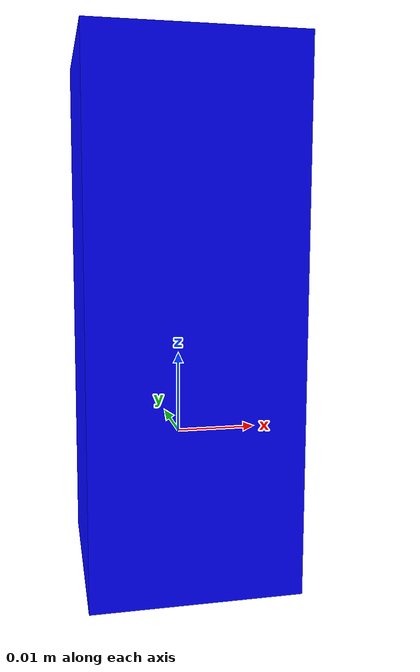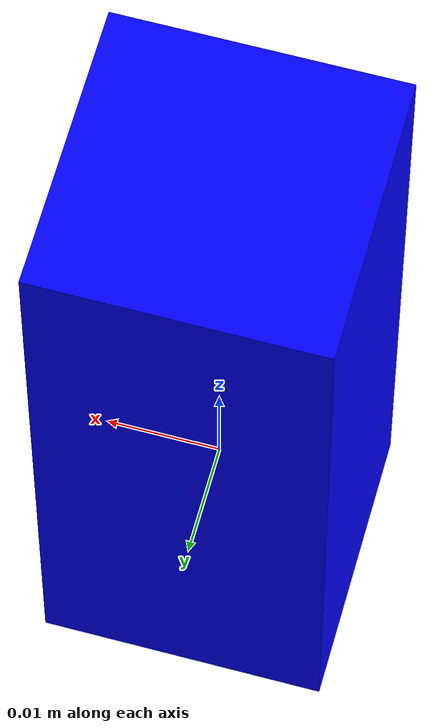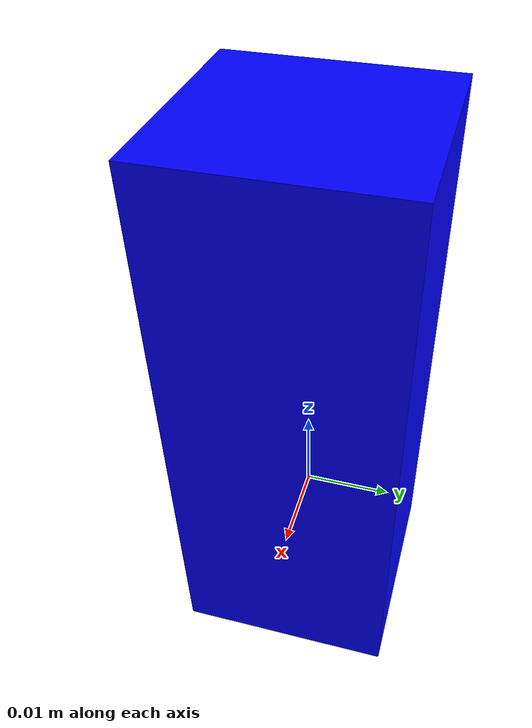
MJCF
<mujoco model="suction_hand">
    <worldbody>
        <body name="suction_gripper" pos="0 0 0.015" quat="0.707107 0 0 -0.707107" >
            <site name="ft_frame" pos="0 0 0" size="0.01 0.01 0.01" rgba="1 0 0 1" type="sphere" group="1"/>
            <inertial pos="0 0 0" mass="3e-2" diaginertia="1e-2 1e-2 1e-2"/>

            <geom type="box" pos="0 0 0" size="0.0125 0.0125 0.032" name="suction_gripper_vis" contype="0" conaffinity="0" group="1" rgba="0 0 1 1" />
            <geom type="box" group="0" pos="0 0 0" size="0.0125 0.0125 0.032" name="suction_gripper_collision" solimp="0.2 0.9 0.01" solmix="10000" solref="0.05 1" rgba="0 0 1 1" friction="0.001 0.005 0.0001"/>

            <!-- This site was added for visualization. -->
            <site name="grip_site" pos="0 0 0" size="0.01 0.01 0.01" rgba="1 0 0 0.5" type="sphere" group="0"/>
            <!-- This site was added for visualization. -->
            <site name="grip_site_cylinder" pos="0 0 0" size="0.005 10" rgba="0 1 0 0" type="cylinder" group="0"/>
        </body>
    </worldbody>
    <sensor>
        <force name="force_ee" site="ft_frame"/>
        <torque name="torque_ee" site="ft_frame"/>
    </sensor>
    <equality>
        <weld name="suction_weld_constraint" body1="suction_gripper" active="false"/>
    </equality>
</mujoco>
